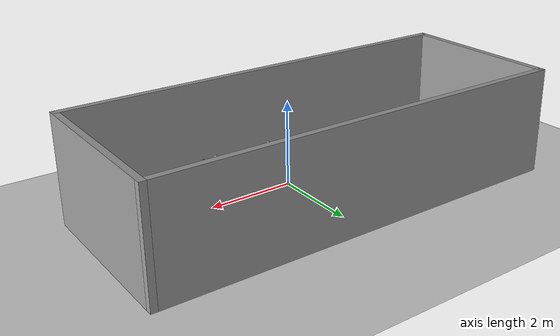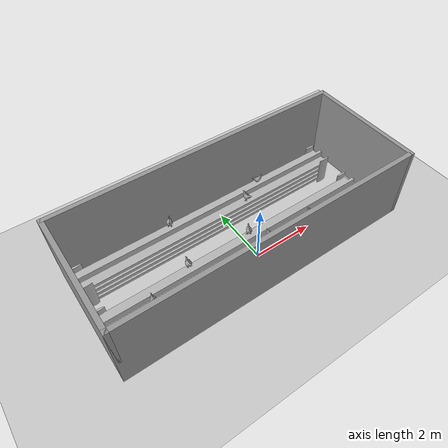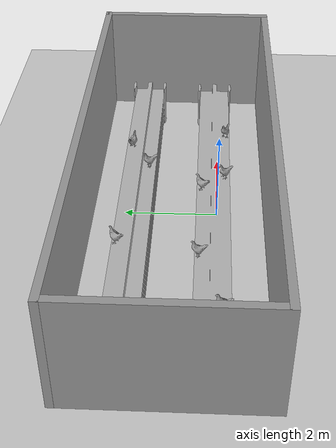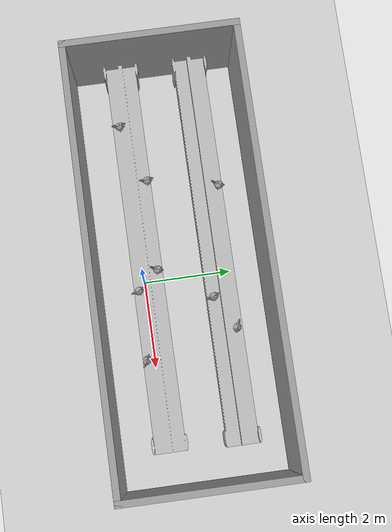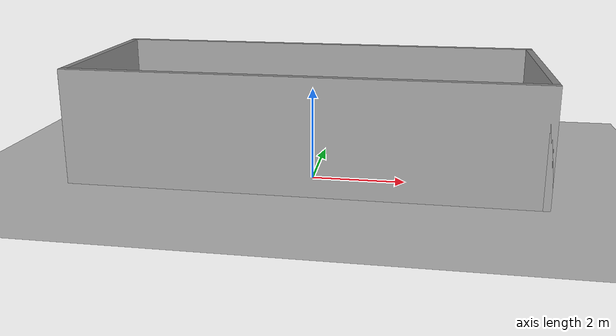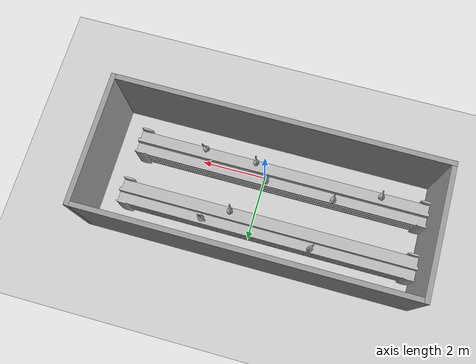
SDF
<sdf version="1.7">
 <world name="default">
  <model name="ground_plane">
   <static>1</static>
   <link name="link">
    <collision name="collision">
     <geometry><plane><normal>0 0 1</normal><size>100 100</size></plane></geometry>
     <surface><friction><ode><mu>100</mu><mu2>50</mu2></ode></friction></surface>
    </collision>
    <visual name="visual">
     <cast_shadows>0</cast_shadows>
     <geometry><plane><normal>0 0 1</normal><size>100 100</size></plane></geometry>
     <material>
      <script><uri>file://media/materials/scripts/gazebo.material</uri><name>Gazebo/Grey</name></script>
     </material>
    </visual>
   </link>
  </model>
  <light name="sun" type="directional">
   <pose>0 0 10 0 -0 0</pose>
   <diffuse>0.8 0.8 0.8 1</diffuse>
   <specular>0.2 0.2 0.2 1</specular>
   <attenuation>
    <range>1000</range>
    <constant>0.9</constant>
    <linear>0.01</linear>
    <quadratic>0.001</quadratic>
   </attenuation>
   <direction>-0.5 0.1 -0.9</direction>
   <spot><inner_angle>0</inner_angle><outer_angle>0</outer_angle><falloff>0</falloff></spot>
  </light>
  <gravity>0 0 -9.8</gravity>
  <magnetic_field>6e-06 2.3e-05 -4.2e-05</magnetic_field>
  <atmosphere type="adiabatic"/>
  <physics type="ode">
   <max_step_size>0.001</max_step_size>
   <real_time_factor>1</real_time_factor>
   <real_time_update_rate>1000</real_time_update_rate>
  </physics>
  <scene><ambient>0.4 0.4 0.4 1</ambient><background>0.7 0.7 0.7 1</background><shadows>1</shadows></scene>
  <audio><device>default</device></audio>
  <spherical_coordinates>
   <surface_model>EARTH_WGS84</surface_model>
   <latitude_deg>0</latitude_deg>
   <longitude_deg>0</longitude_deg>
   <elevation>0</elevation>
   <heading_deg>0</heading_deg>
  </spherical_coordinates>
  <model name="Stall4x10">
   <pose>1.16004 0.83872 0 0 -0 0</pose>
   <link name="Wall_6">
    <collision name="Wall_6_Collision">
     <geometry><box><size>4 0.15 2.5</size></box></geometry>
     <pose>0 0 1.25 0 -0 0</pose>
    </collision>
    <visual name="Wall_6_Visual">
     <pose>0 0 1.25 0 -0 0</pose>
     <geometry><box><size>4 0.15 2.5</size></box></geometry>
     <material>
      <script><uri>file://media/materials/scripts/gazebo.material</uri><name>Gazebo/Grey</name></script>
      <ambient>1 1 1 1</ambient>
     </material>
     <meta><layer>0</layer></meta>
    </visual>
    <pose>-6.2376 -0 0 0 -0 -1.5708</pose>
   </link>
   <link name="Wall_7">
    <collision name="Wall_7_Collision">
     <geometry><box><size>10 0.15 2.5</size></box></geometry>
     <pose>0 0 1.25 0 -0 0</pose>
    </collision>
    <visual name="Wall_7_Visual">
     <pose>0 0 1.25 0 -0 0</pose>
     <geometry><box><size>10 0.15 2.5</size></box></geometry>
     <material>
      <script><uri>file://media/materials/scripts/gazebo.material</uri><name>Gazebo/Grey</name></script>
      <ambient>1 1 1 1</ambient>
     </material>
     <meta><layer>0</layer></meta>
    </visual>
    <pose>-1.3126 -1.925 0 0 -0 0</pose>
   </link>
   <link name="Wall_8">
    <collision name="Wall_8_Collision">
     <geometry><box><size>4 0.15 2.5</size></box></geometry>
     <pose>0 0 1.25 0 -0 0</pose>
    </collision>
    <visual name="Wall_8_Visual">
     <pose>0 0 1.25 0 -0 0</pose>
     <geometry><box><size>4 0.15 2.5</size></box></geometry>
     <material>
      <script><uri>file://media/materials/scripts/gazebo.material</uri><name>Gazebo/Grey</name></script>
      <ambient>1 1 1 1</ambient>
     </material>
     <meta><layer>0</layer></meta>
    </visual>
    <pose>3.6124 -0 0 0 -0 1.5708</pose>
   </link>
   <link name="Wall_9">
    <collision name="Wall_9_Collision">
     <geometry><box><size>10 0.15 2.5</size></box></geometry>
     <pose>0 0 1.25 0 -0 0</pose>
    </collision>
    <visual name="Wall_9_Visual">
     <pose>0 0 1.25 0 -0 0</pose>
     <geometry><box><size>10 0.15 2.5</size></box></geometry>
     <material>
      <script><uri>file://media/materials/scripts/gazebo.material</uri><name>Gazebo/Grey</name></script>
      <ambient>1 1 1 1</ambient>
     </material>
     <meta><layer>0</layer></meta>
    </visual>
    <pose>-1.3126 1.925 0 0 -0 3.14159</pose>
   </link>
   <static>1</static>
  </model>
  <model name="my_static_object">
   <static>1</static>
   <link name="link">
    <visual name="visual"><geometry><mesh><uri>./theck_shelf.dae</uri></mesh></geometry></visual>
    <collision name="collision"><geometry><mesh><uri>./theck_shelf.dae</uri></mesh></geometry></collision>
   </link>
   <pose>-0.556239 0.09276 0 0 -0 0</pose>
  </model>
  <model name="my_static_object_0">
   <static>1</static>
   <link name="link">
    <visual name="visual"><geometry><mesh><uri>./theck_shelf.dae</uri></mesh></geometry></visual>
    <collision name="collision"><geometry><mesh><uri>/./theck_shelf.dae</uri></mesh></geometry></collision>
   </link>
   <pose>-0.505635 1.70855 0 0 -0 0</pose>
  </model>
  <model name="model_final">
   <model name="model_final">
    <static>1</static>
    <link name="link_0">
     <inertial>
      <mass>1</mass>
      <inertia>
       <ixx>0.166667</ixx>
       <ixy>0</ixy>
       <ixz>0</ixz>
       <iyy>0.166667</iyy>
       <iyz>0</iyz>
       <izz>0.166667</izz>
      </inertia>
     </inertial>
     <visual name="visual">
      <geometry><mesh><uri>./chicken.stl</uri><scale>1 1 1</scale></mesh></geometry>
      <material>
       <lighting>1</lighting>
       <script><uri>file://media/materials/scripts/gazebo.material</uri><name>Gazebo/Grey</name></script>
       <shader type="pixel"/>
      </material>
     </visual>
     <collision name="collision">
      <geometry><mesh><uri>./chicken.stl</uri><scale>1 1 1</scale></mesh></geometry>
      <surface>
       <friction>
        <ode><mu>1</mu><mu2>1</mu2><fdir1>0 0 0</fdir1><slip1>0</slip1><slip2>0</slip2></ode>
        <torsional>
         <coefficient>1</coefficient>
         <patch_radius>0</patch_radius>
         <surface_radius>0</surface_radius>
         <use_patch_radius>1</use_patch_radius>
         <ode><slip>0</slip></ode>
        </torsional>
       </friction>
       <bounce><restitution_coefficient>0</restitution_coefficient><threshold>1e+06</threshold></bounce>
       <contact>
        <collide_without_contact>0</collide_without_contact>
        <collide_without_contact_bitmask>1</collide_without_contact_bitmask>
        <collide_bitmask>1</collide_bitmask>
        <ode>
         <soft_cfm>0</soft_cfm>
         <soft_erp>0.2</soft_erp>
         <kp>1e+13</kp>
         <kd>1</kd>
         <max_vel>0.01</max_vel>
         <min_depth>0</min_depth>
        </ode>
        <bullet>
         <split_impulse>1</split_impulse>
         <split_impulse_penetration_threshold>-0.01</split_impulse_penetration_threshold>
         <soft_cfm>0</soft_cfm>
         <soft_erp>0.2</soft_erp>
         <kp>1e+13</kp>
         <kd>1</kd>
        </bullet>
       </contact>
      </surface>
     </collision>
    </link>
    <static>0</static>
    <pose>-1.31547 0.835308 -1e-06 0 -0 0</pose>
   </model>
   <static>0</static>
   <pose>1.8513 -0.52505 0.812744 0 -0 0.347644</pose>
  </model>
  <model name="model_final_0">
   <model name="model_final">
    <static>1</static>
    <link name="link_0">
     <inertial>
      <mass>1</mass>
      <inertia>
       <ixx>0.166667</ixx>
       <ixy>0</ixy>
       <ixz>0</ixz>
       <iyy>0.166667</iyy>
       <iyz>0</iyz>
       <izz>0.166667</izz>
      </inertia>
     </inertial>
     <visual name="visual">
      <geometry><mesh><uri>./chicken.stl</uri><scale>1 1 1</scale></mesh></geometry>
      <material>
       <lighting>1</lighting>
       <script><uri>file://media/materials/scripts/gazebo.material</uri><name>Gazebo/Grey</name></script>
       <shader type="pixel"/>
      </material>
     </visual>
     <collision name="collision">
      <geometry><mesh><uri>./chicken.stl</uri><scale>1 1 1</scale></mesh></geometry>
      <surface>
       <friction>
        <ode><mu>1</mu><mu2>1</mu2><fdir1>0 0 0</fdir1><slip1>0</slip1><slip2>0</slip2></ode>
        <torsional>
         <coefficient>1</coefficient>
         <patch_radius>0</patch_radius>
         <surface_radius>0</surface_radius>
         <use_patch_radius>1</use_patch_radius>
         <ode><slip>0</slip></ode>
        </torsional>
       </friction>
       <bounce><restitution_coefficient>0</restitution_coefficient><threshold>1e+06</threshold></bounce>
       <contact>
        <collide_without_contact>0</collide_without_contact>
        <collide_without_contact_bitmask>1</collide_without_contact_bitmask>
        <collide_bitmask>1</collide_bitmask>
        <ode>
         <soft_cfm>0</soft_cfm>
         <soft_erp>0.2</soft_erp>
         <kp>1e+13</kp>
         <kd>1</kd>
         <max_vel>0.01</max_vel>
         <min_depth>0</min_depth>
        </ode>
        <bullet>
         <split_impulse>1</split_impulse>
         <split_impulse_penetration_threshold>-0.01</split_impulse_penetration_threshold>
         <soft_cfm>0</soft_cfm>
         <soft_erp>0.2</soft_erp>
         <kp>1e+13</kp>
         <kd>1</kd>
        </bullet>
       </contact>
      </surface>
     </collision>
    </link>
    <static>0</static>
    <pose>-1.31547 0.835308 -1e-06 0 -0 0</pose>
   </model>
   <static>0</static>
   <pose>-0.87576 -0.512129 0.822505 0 -0 0</pose>
  </model>
  <model name="model_final_1">
   <model name="model_final">
    <static>1</static>
    <link name="link_0">
     <inertial>
      <mass>1</mass>
      <inertia>
       <ixx>0.166667</ixx>
       <ixy>0</ixy>
       <ixz>0</ixz>
       <iyy>0.166667</iyy>
       <iyz>0</iyz>
       <izz>0.166667</izz>
      </inertia>
     </inertial>
     <visual name="visual">
      <geometry><mesh><uri>./chicken.stl</uri><scale>1 1 1</scale></mesh></geometry>
      <material>
       <lighting>1</lighting>
       <script><uri>file://media/materials/scripts/gazebo.material</uri><name>Gazebo/Grey</name></script>
       <shader type="pixel"/>
      </material>
     </visual>
     <collision name="collision">
      <geometry><mesh><uri>./chicken.stl</uri><scale>1 1 1</scale></mesh></geometry>
      <surface>
       <friction>
        <ode><mu>1</mu><mu2>1</mu2><fdir1>0 0 0</fdir1><slip1>0</slip1><slip2>0</slip2></ode>
        <torsional>
         <coefficient>1</coefficient>
         <patch_radius>0</patch_radius>
         <surface_radius>0</surface_radius>
         <use_patch_radius>1</use_patch_radius>
         <ode><slip>0</slip></ode>
        </torsional>
       </friction>
       <bounce><restitution_coefficient>0</restitution_coefficient><threshold>1e+06</threshold></bounce>
       <contact>
        <collide_without_contact>0</collide_without_contact>
        <collide_without_contact_bitmask>1</collide_without_contact_bitmask>
        <collide_bitmask>1</collide_bitmask>
        <ode>
         <soft_cfm>0</soft_cfm>
         <soft_erp>0.2</soft_erp>
         <kp>1e+13</kp>
         <kd>1</kd>
         <max_vel>0.01</max_vel>
         <min_depth>0</min_depth>
        </ode>
        <bullet>
         <split_impulse>1</split_impulse>
         <split_impulse_penetration_threshold>-0.01</split_impulse_penetration_threshold>
         <soft_cfm>0</soft_cfm>
         <soft_erp>0.2</soft_erp>
         <kp>1e+13</kp>
         <kd>1</kd>
        </bullet>
       </contact>
      </surface>
     </collision>
    </link>
    <static>0</static>
    <pose>-1.31547 0.835308 -1e-06 0 -0 0</pose>
   </model>
   <static>0</static>
   <pose>0.7124 -1.01548 0.818254 0 0 -0.431359</pose>
  </model>
  <model name="model_final_2">
   <model name="model_final">
    <static>1</static>
    <link name="link_0">
     <inertial>
      <mass>1</mass>
      <inertia>
       <ixx>0.166667</ixx>
       <ixy>0</ixy>
       <ixz>0</ixz>
       <iyy>0.166667</iyy>
       <iyz>0</iyz>
       <izz>0.166667</izz>
      </inertia>
     </inertial>
     <visual name="visual">
      <geometry><mesh><uri>./chicken.stl</uri><scale>1 1 1</scale></mesh></geometry>
      <material>
       <lighting>1</lighting>
       <script><uri>file://media/materials/scripts/gazebo.material</uri><name>Gazebo/Grey</name></script>
       <shader type="pixel"/>
      </material>
     </visual>
     <collision name="collision">
      <geometry><mesh><uri>./chicken.stl</uri><scale>1 1 1</scale></mesh></geometry>
      <surface>
       <friction>
        <ode><mu>1</mu><mu2>1</mu2><fdir1>0 0 0</fdir1><slip1>0</slip1><slip2>0</slip2></ode>
        <torsional>
         <coefficient>1</coefficient>
         <patch_radius>0</patch_radius>
         <surface_radius>0</surface_radius>
         <use_patch_radius>1</use_patch_radius>
         <ode><slip>0</slip></ode>
        </torsional>
       </friction>
       <bounce><restitution_coefficient>0</restitution_coefficient><threshold>1e+06</threshold></bounce>
       <contact>
        <collide_without_contact>0</collide_without_contact>
        <collide_without_contact_bitmask>1</collide_without_contact_bitmask>
        <collide_bitmask>1</collide_bitmask>
        <ode>
         <soft_cfm>0</soft_cfm>
         <soft_erp>0.2</soft_erp>
         <kp>1e+13</kp>
         <kd>1</kd>
         <max_vel>0.01</max_vel>
         <min_depth>0</min_depth>
        </ode>
        <bullet>
         <split_impulse>1</split_impulse>
         <split_impulse_penetration_threshold>-0.01</split_impulse_penetration_threshold>
         <soft_cfm>0</soft_cfm>
         <soft_erp>0.2</soft_erp>
         <kp>1e+13</kp>
         <kd>1</kd>
        </bullet>
       </contact>
      </surface>
     </collision>
    </link>
    <static>0</static>
    <pose>-1.31547 0.835308 -1e-06 0 -0 0</pose>
   </model>
   <static>0</static>
   <pose>-1.17913 0.550114 0.820971 0 0 -0.522993</pose>
  </model>
  <model name="model_final_3">
   <model name="model_final">
    <static>1</static>
    <link name="link_0">
     <inertial>
      <mass>1</mass>
      <inertia>
       <ixx>0.166667</ixx>
       <ixy>0</ixy>
       <ixz>0</ixz>
       <iyy>0.166667</iyy>
       <iyz>0</iyz>
       <izz>0.166667</izz>
      </inertia>
     </inertial>
     <visual name="visual">
      <geometry><mesh><uri>./chicken.stl</uri><scale>1 1 1</scale></mesh></geometry>
      <material>
       <lighting>1</lighting>
       <script><uri>file://media/materials/scripts/gazebo.material</uri><name>Gazebo/Grey</name></script>
       <shader type="pixel"/>
      </material>
     </visual>
     <collision name="collision">
      <geometry><mesh><uri>./chicken.stl</uri><scale>1 1 1</scale></mesh></geometry>
      <surface>
       <friction>
        <ode><mu>1</mu><mu2>1</mu2><fdir1>0 0 0</fdir1><slip1>0</slip1><slip2>0</slip2></ode>
        <torsional>
         <coefficient>1</coefficient>
         <patch_radius>0</patch_radius>
         <surface_radius>0</surface_radius>
         <use_patch_radius>1</use_patch_radius>
         <ode><slip>0</slip></ode>
        </torsional>
       </friction>
       <bounce><restitution_coefficient>0</restitution_coefficient><threshold>1e+06</threshold></bounce>
       <contact>
        <collide_without_contact>0</collide_without_contact>
        <collide_without_contact_bitmask>1</collide_without_contact_bitmask>
        <collide_bitmask>1</collide_bitmask>
        <ode>
         <soft_cfm>0</soft_cfm>
         <soft_erp>0.2</soft_erp>
         <kp>1e+13</kp>
         <kd>1</kd>
         <max_vel>0.01</max_vel>
         <min_depth>0</min_depth>
        </ode>
        <bullet>
         <split_impulse>1</split_impulse>
         <split_impulse_penetration_threshold>-0.01</split_impulse_penetration_threshold>
         <soft_cfm>0</soft_cfm>
         <soft_erp>0.2</soft_erp>
         <kp>1e+13</kp>
         <kd>1</kd>
        </bullet>
       </contact>
      </surface>
     </collision>
    </link>
    <static>0</static>
    <pose>-1.31547 0.835308 -1e-06 0 -0 0</pose>
   </model>
   <static>0</static>
   <pose>-2.23575 -0.978517 0.811367 0 -0 0</pose>
  </model>
  <model name="model_final_4">
   <model name="model_final">
    <static>1</static>
    <link name="link_0">
     <inertial>
      <mass>1</mass>
      <inertia>
       <ixx>0.166667</ixx>
       <ixy>0</ixy>
       <ixz>0</ixz>
       <iyy>0.166667</iyy>
       <iyz>0</iyz>
       <izz>0.166667</izz>
      </inertia>
     </inertial>
     <visual name="visual">
      <geometry><mesh><uri>./chicken.stl</uri><scale>1 1 1</scale></mesh></geometry>
      <material>
       <lighting>1</lighting>
       <script><uri>file://media/materials/scripts/gazebo.material</uri><name>Gazebo/Grey</name></script>
       <shader type="pixel"/>
      </material>
     </visual>
     <collision name="collision">
      <geometry><mesh><uri>./chicken.stl</uri><scale>1 1 1</scale></mesh></geometry>
      <surface>
       <friction>
        <ode><mu>1</mu><mu2>1</mu2><fdir1>0 0 0</fdir1><slip1>0</slip1><slip2>0</slip2></ode>
        <torsional>
         <coefficient>1</coefficient>
         <patch_radius>0</patch_radius>
         <surface_radius>0</surface_radius>
         <use_patch_radius>1</use_patch_radius>
         <ode><slip>0</slip></ode>
        </torsional>
       </friction>
       <bounce><restitution_coefficient>0</restitution_coefficient><threshold>1e+06</threshold></bounce>
       <contact>
        <collide_without_contact>0</collide_without_contact>
        <collide_without_contact_bitmask>1</collide_without_contact_bitmask>
        <collide_bitmask>1</collide_bitmask>
        <ode>
         <soft_cfm>0</soft_cfm>
         <soft_erp>0.2</soft_erp>
         <kp>1e+13</kp>
         <kd>1</kd>
         <max_vel>0.01</max_vel>
         <min_depth>0</min_depth>
        </ode>
        <bullet>
         <split_impulse>1</split_impulse>
         <split_impulse_penetration_threshold>-0.01</split_impulse_penetration_threshold>
         <soft_cfm>0</soft_cfm>
         <soft_erp>0.2</soft_erp>
         <kp>1e+13</kp>
         <kd>1</kd>
        </bullet>
       </contact>
      </surface>
     </collision>
    </link>
    <static>0</static>
    <pose>-1.31547 0.835308 -1e-06 0 -0 0</pose>
   </model>
   <static>0</static>
   <pose>3.29889 0.550021 0.816514 0 -0 1.05786</pose>
  </model>
  <model name="model_final_5">
   <model name="model_final">
    <static>1</static>
    <link name="link_0">
     <inertial>
      <mass>1</mass>
      <inertia>
       <ixx>0.166667</ixx>
       <ixy>0</ixy>
       <ixz>0</ixz>
       <iyy>0.166667</iyy>
       <iyz>0</iyz>
       <izz>0.166667</izz>
      </inertia>
     </inertial>
     <visual name="visual">
      <geometry><mesh><uri>./chicken.stl</uri><scale>1 1 1</scale></mesh></geometry>
      <material>
       <lighting>1</lighting>
       <script><uri>file://media/materials/scripts/gazebo.material</uri><name>Gazebo/Grey</name></script>
       <shader type="pixel"/>
      </material>
     </visual>
     <collision name="collision">
      <geometry><mesh><uri>./chicken.stl</uri><scale>1 1 1</scale></mesh></geometry>
      <surface>
       <friction>
        <ode><mu>1</mu><mu2>1</mu2><fdir1>0 0 0</fdir1><slip1>0</slip1><slip2>0</slip2></ode>
        <torsional>
         <coefficient>1</coefficient>
         <patch_radius>0</patch_radius>
         <surface_radius>0</surface_radius>
         <use_patch_radius>1</use_patch_radius>
         <ode><slip>0</slip></ode>
        </torsional>
       </friction>
       <bounce><restitution_coefficient>0</restitution_coefficient><threshold>1e+06</threshold></bounce>
       <contact>
        <collide_without_contact>0</collide_without_contact>
        <collide_without_contact_bitmask>1</collide_without_contact_bitmask>
        <collide_bitmask>1</collide_bitmask>
        <ode>
         <soft_cfm>0</soft_cfm>
         <soft_erp>0.2</soft_erp>
         <kp>1e+13</kp>
         <kd>1</kd>
         <max_vel>0.01</max_vel>
         <min_depth>0</min_depth>
        </ode>
        <bullet>
         <split_impulse>1</split_impulse>
         <split_impulse_penetration_threshold>-0.01</split_impulse_penetration_threshold>
         <soft_cfm>0</soft_cfm>
         <soft_erp>0.2</soft_erp>
         <kp>1e+13</kp>
         <kd>1</kd>
        </bullet>
       </contact>
      </surface>
     </collision>
    </link>
    <static>0</static>
    <pose>-1.31547 0.835308 -1e-06 0 -0 0</pose>
   </model>
   <static>0</static>
   <pose>2.18778 1.07098 0.821827 0 -0 0.3187</pose>
  </model>
  <model name="model_final_6">
   <model name="model_final">
    <static>1</static>
    <link name="link_0">
     <inertial>
      <mass>1</mass>
      <inertia>
       <ixx>0.166667</ixx>
       <ixy>0</ixy>
       <ixz>0</ixz>
       <iyy>0.166667</iyy>
       <iyz>0</iyz>
       <izz>0.166667</izz>
      </inertia>
     </inertial>
     <visual name="visual">
      <geometry><mesh><uri>./chicken.stl</uri><scale>1 1 1</scale></mesh></geometry>
      <material>
       <lighting>1</lighting>
       <script><uri>file://media/materials/scripts/gazebo.material</uri><name>Gazebo/Grey</name></script>
       <shader type="pixel"/>
      </material>
     </visual>
     <collision name="collision">
      <geometry><mesh><uri>./chicken.stl</uri><scale>1 1 1</scale></mesh></geometry>
      <surface>
       <friction>
        <ode><mu>1</mu><mu2>1</mu2><fdir1>0 0 0</fdir1><slip1>0</slip1><slip2>0</slip2></ode>
        <torsional>
         <coefficient>1</coefficient>
         <patch_radius>0</patch_radius>
         <surface_radius>0</surface_radius>
         <use_patch_radius>1</use_patch_radius>
         <ode><slip>0</slip></ode>
        </torsional>
       </friction>
       <bounce><restitution_coefficient>0</restitution_coefficient><threshold>1e+06</threshold></bounce>
       <contact>
        <collide_without_contact>0</collide_without_contact>
        <collide_without_contact_bitmask>1</collide_without_contact_bitmask>
        <collide_bitmask>1</collide_bitmask>
        <ode>
         <soft_cfm>0</soft_cfm>
         <soft_erp>0.2</soft_erp>
         <kp>1e+13</kp>
         <kd>1</kd>
         <max_vel>0.01</max_vel>
         <min_depth>0</min_depth>
        </ode>
        <bullet>
         <split_impulse>1</split_impulse>
         <split_impulse_penetration_threshold>-0.01</split_impulse_penetration_threshold>
         <soft_cfm>0</soft_cfm>
         <soft_erp>0.2</soft_erp>
         <kp>1e+13</kp>
         <kd>1</kd>
        </bullet>
       </contact>
      </surface>
     </collision>
    </link>
    <static>0</static>
    <pose>-1.31547 0.835308 -1e-06 0 -0 0</pose>
   </model>
   <static>0</static>
   <pose>0.094419 1.05429 0.809867 0 0 -1.96479</pose>
  </model>
 </world>
</sdf>
